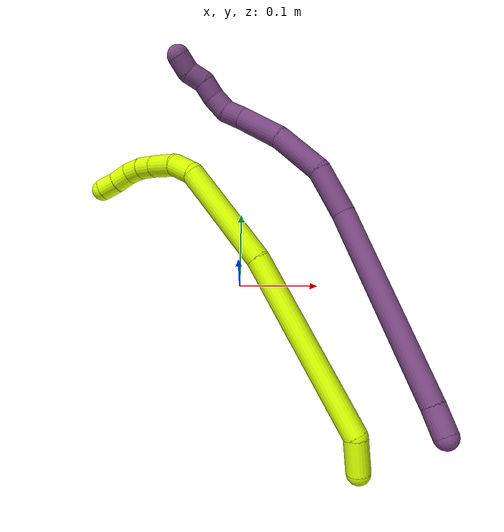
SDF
<sdf version="1.7">
 <world name="default">
  <model name="15">
   <static>0</static>
   <link name="15">
    <collision name="collision-cylinder-e_1_1_4">
     <pose>-0.007682 0.016788 0.001909 -1.45759 -0.426727 0.382129</pose>
     <geometry><cylinder><radius>0.0125</radius><length>0.037122</length></cylinder></geometry>
     <surface>
      <friction><ode><mu>1.16</mu><mu2>1.16</mu2><slip1>0</slip1><slip2>0</slip2></ode></friction>
      <contact><ode><kp>1e+06</kp><kd>1</kd><max_vel>0</max_vel><min_depth>0.001</min_depth></ode></contact>
     </surface>
    </collision>
    <visual name="visual-cylinder-e_1_1_4">
     <pose>-0.007682 0.016788 0.001909 -1.45759 -0.426727 0.382129</pose>
     <geometry><cylinder><radius>0.0125</radius><length>0.037122</length></cylinder></geometry>
     <material><ambient>0.835294 1 0 1</ambient></material>
    </visual>
    <collision name="collision-cylinder-e_2_4_5">
     <pose>-0.074588 0.106006 -0.03077 -2.01632 -0.635685 0.961705</pose>
     <geometry><cylinder><radius>0.0125</radius><length>0.199496</length></cylinder></geometry>
     <surface>
      <friction><ode><mu>1.16</mu><mu2>1.16</mu2><slip1>0</slip1><slip2>0</slip2></ode></friction>
      <contact><ode><kp>1e+06</kp><kd>1</kd><max_vel>0</max_vel><min_depth>0.001</min_depth></ode></contact>
     </surface>
    </collision>
    <visual name="visual-cylinder-e_2_4_5">
     <pose>-0.074588 0.106006 -0.03077 -2.01632 -0.635685 0.961705</pose>
     <geometry><cylinder><radius>0.0125</radius><length>0.199496</length></cylinder></geometry>
     <material><ambient>0.835294 1 0 1</ambient></material>
    </visual>
    <collision name="collision-cylinder-e_3_5_6">
     <pose>-0.172447 0.214711 -0.091063 -2.18726 -0.715423 1.25197</pose>
     <geometry><cylinder><radius>0.0125</radius><length>0.117803</length></cylinder></geometry>
     <surface>
      <friction><ode><mu>1.16</mu><mu2>1.16</mu2><slip1>0</slip1><slip2>0</slip2></ode></friction>
      <contact><ode><kp>1e+06</kp><kd>1</kd><max_vel>0</max_vel><min_depth>0.001</min_depth></ode></contact>
     </surface>
    </collision>
    <visual name="visual-cylinder-e_3_5_6">
     <pose>-0.172447 0.214711 -0.091063 -2.18726 -0.715423 1.25197</pose>
     <geometry><cylinder><radius>0.0125</radius><length>0.117803</length></cylinder></geometry>
     <material><ambient>0.835294 1 0 1</ambient></material>
    </visual>
    <collision name="collision-cylinder-e_4_6_7">
     <pose>-0.219109 0.254647 -0.128059 -2.82811 -0.594539 2.18906</pose>
     <geometry><cylinder><radius>0.0125</radius><length>0.028658</length></cylinder></geometry>
     <surface>
      <friction><ode><mu>1.16</mu><mu2>1.16</mu2><slip1>0</slip1><slip2>0</slip2></ode></friction>
      <contact><ode><kp>1e+06</kp><kd>1</kd><max_vel>0</max_vel><min_depth>0.001</min_depth></ode></contact>
     </surface>
    </collision>
    <visual name="visual-cylinder-e_4_6_7">
     <pose>-0.219109 0.254647 -0.128059 -2.82811 -0.594539 2.18906</pose>
     <geometry><cylinder><radius>0.0125</radius><length>0.028658</length></cylinder></geometry>
     <material><ambient>0.835294 1 0 1</ambient></material>
    </visual>
    <collision name="collision-cylinder-e_5_7_8">
     <pose>-0.234556 0.257238 -0.155384 3.07497 -0.432681 -2.84066</pose>
     <geometry><cylinder><radius>0.0125</radius><length>0.035399</length></cylinder></geometry>
     <surface>
      <friction><ode><mu>1.16</mu><mu2>1.16</mu2><slip1>0</slip1><slip2>0</slip2></ode></friction>
      <contact><ode><kp>1e+06</kp><kd>1</kd><max_vel>0</max_vel><min_depth>0.001</min_depth></ode></contact>
     </surface>
    </collision>
    <visual name="visual-cylinder-e_5_7_8">
     <pose>-0.234556 0.257238 -0.155384 3.07497 -0.432681 -2.84066</pose>
     <geometry><cylinder><radius>0.0125</radius><length>0.035399</length></cylinder></geometry>
     <material><ambient>0.835294 1 0 1</ambient></material>
    </visual>
    <collision name="collision-cylinder-e_6_8_9">
     <pose>-0.247273 0.254451 -0.180411 2.95285 -0.524296 -2.46335</pose>
     <geometry><cylinder><radius>0.0125</radius><length>0.021154</length></cylinder></geometry>
     <surface>
      <friction><ode><mu>1.16</mu><mu2>1.16</mu2><slip1>0</slip1><slip2>0</slip2></ode></friction>
      <contact><ode><kp>1e+06</kp><kd>1</kd><max_vel>0</max_vel><min_depth>0.001</min_depth></ode></contact>
     </surface>
    </collision>
    <visual name="visual-cylinder-e_6_8_9">
     <pose>-0.247273 0.254451 -0.180411 2.95285 -0.524296 -2.46335</pose>
     <geometry><cylinder><radius>0.0125</radius><length>0.021154</length></cylinder></geometry>
     <material><ambient>0.835294 1 0 1</ambient></material>
    </visual>
    <collision name="collision-cylinder-e_7_9_10">
     <pose>-0.257341 0.249002 -0.197439 2.70687 -0.4942 -1.70336</pose>
     <geometry><cylinder><radius>0.0125</radius><length>0.020124</length></cylinder></geometry>
     <surface>
      <friction><ode><mu>1.16</mu><mu2>1.16</mu2><slip1>0</slip1><slip2>0</slip2></ode></friction>
      <contact><ode><kp>1e+06</kp><kd>1</kd><max_vel>0</max_vel><min_depth>0.001</min_depth></ode></contact>
     </surface>
    </collision>
    <visual name="visual-cylinder-e_7_9_10">
     <pose>-0.257341 0.249002 -0.197439 2.70687 -0.4942 -1.70336</pose>
     <geometry><cylinder><radius>0.0125</radius><length>0.020124</length></cylinder></geometry>
     <material><ambient>0.835294 1 0 1</ambient></material>
    </visual>
    <collision name="collision-cylinder-e_8_10_11">
     <pose>-0.267203 0.238497 -0.210985 2.25386 -0.527609 -1.03315</pose>
     <geometry><cylinder><radius>0.0125</radius><length>0.020216</length></cylinder></geometry>
     <surface>
      <friction><ode><mu>1.16</mu><mu2>1.16</mu2><slip1>0</slip1><slip2>0</slip2></ode></friction>
      <contact><ode><kp>1e+06</kp><kd>1</kd><max_vel>0</max_vel><min_depth>0.001</min_depth></ode></contact>
     </surface>
    </collision>
    <visual name="visual-cylinder-e_8_10_11">
     <pose>-0.267203 0.238497 -0.210985 2.25386 -0.527609 -1.03315</pose>
     <geometry><cylinder><radius>0.0125</radius><length>0.020216</length></cylinder></geometry>
     <material><ambient>0.835294 1 0 1</ambient></material>
    </visual>
    <collision name="collision-cylinder-e_9_11_2">
     <pose>-0.278002 0.225534 -0.221915 2.2898 -0.606894 -1.20823</pose>
     <geometry><cylinder><radius>0.0125</radius><length>0.020026</length></cylinder></geometry>
     <surface>
      <friction><ode><mu>1.16</mu><mu2>1.16</mu2><slip1>0</slip1><slip2>0</slip2></ode></friction>
      <contact><ode><kp>1e+06</kp><kd>1</kd><max_vel>0</max_vel><min_depth>0.001</min_depth></ode></contact>
     </surface>
    </collision>
    <visual name="visual-cylinder-e_9_11_2">
     <pose>-0.278002 0.225534 -0.221915 2.2898 -0.606894 -1.20823</pose>
     <geometry><cylinder><radius>0.0125</radius><length>0.020026</length></cylinder></geometry>
     <material><ambient>0.835294 1 0 1</ambient></material>
    </visual>
    <collision name="collision-sphere-2">
     <pose>-0.283713 0.219345 -0.227332 0 -0 0</pose>
     <geometry><sphere><radius>0.0125</radius></sphere></geometry>
     <surface>
      <friction><ode><mu>1.16</mu><mu2>1.16</mu2><slip1>0</slip1><slip2>0</slip2></ode></friction>
      <contact><ode><kp>1e+06</kp><kd>1</kd><max_vel>0</max_vel><min_depth>0.001</min_depth></ode></contact>
     </surface>
    </collision>
    <visual name="visual-sphere-2">
     <pose>-0.283713 0.219345 -0.227332 0 -0 0</pose>
     <geometry><sphere><radius>0.0125</radius></sphere></geometry>
     <material><ambient>0.835294 1 0 1</ambient></material>
    </visual>
    <collision name="collision-sphere-11">
     <pose>-0.272292 0.231723 -0.216498 0 -0 0</pose>
     <geometry><sphere><radius>0.0125</radius></sphere></geometry>
     <surface>
      <friction><ode><mu>1.16</mu><mu2>1.16</mu2><slip1>0</slip1><slip2>0</slip2></ode></friction>
      <contact><ode><kp>1e+06</kp><kd>1</kd><max_vel>0</max_vel><min_depth>0.001</min_depth></ode></contact>
     </surface>
    </collision>
    <visual name="visual-sphere-11">
     <pose>-0.272292 0.231723 -0.216498 0 -0 0</pose>
     <geometry><sphere><radius>0.0125</radius></sphere></geometry>
     <material><ambient>0.835294 1 0 1</ambient></material>
    </visual>
    <collision name="collision-sphere-10">
     <pose>-0.262113 0.245271 -0.205473 0 -0 0</pose>
     <geometry><sphere><radius>0.0125</radius></sphere></geometry>
     <surface>
      <friction><ode><mu>1.16</mu><mu2>1.16</mu2><slip1>0</slip1><slip2>0</slip2></ode></friction>
      <contact><ode><kp>1e+06</kp><kd>1</kd><max_vel>0</max_vel><min_depth>0.001</min_depth></ode></contact>
     </surface>
    </collision>
    <visual name="visual-sphere-10">
     <pose>-0.262113 0.245271 -0.205473 0 -0 0</pose>
     <geometry><sphere><radius>0.0125</radius></sphere></geometry>
     <material><ambient>0.835294 1 0 1</ambient></material>
    </visual>
    <collision name="collision-sphere-9">
     <pose>-0.252568 0.252733 -0.189405 0 -0 0</pose>
     <geometry><sphere><radius>0.0125</radius></sphere></geometry>
     <surface>
      <friction><ode><mu>1.16</mu><mu2>1.16</mu2><slip1>0</slip1><slip2>0</slip2></ode></friction>
      <contact><ode><kp>1e+06</kp><kd>1</kd><max_vel>0</max_vel><min_depth>0.001</min_depth></ode></contact>
     </surface>
    </collision>
    <visual name="visual-sphere-9">
     <pose>-0.252568 0.252733 -0.189405 0 -0 0</pose>
     <geometry><sphere><radius>0.0125</radius></sphere></geometry>
     <material><ambient>0.835294 1 0 1</ambient></material>
    </visual>
    <collision name="collision-sphere-4">
     <pose>-0.015365 0.033577 0.003818 0 -0 0</pose>
     <geometry><sphere><radius>0.0125</radius></sphere></geometry>
     <surface>
      <friction><ode><mu>1.16</mu><mu2>1.16</mu2><slip1>0</slip1><slip2>0</slip2></ode></friction>
      <contact><ode><kp>1e+06</kp><kd>1</kd><max_vel>0</max_vel><min_depth>0.001</min_depth></ode></contact>
     </surface>
    </collision>
    <visual name="visual-sphere-4">
     <pose>-0.015365 0.033577 0.003818 0 -0 0</pose>
     <geometry><sphere><radius>0.0125</radius></sphere></geometry>
     <material><ambient>0.835294 1 0 1</ambient></material>
    </visual>
    <collision name="collision-sphere-1">
     <geometry><sphere><radius>0.0125</radius></sphere></geometry>
     <surface>
      <friction><ode><mu>1.16</mu><mu2>1.16</mu2><slip1>0</slip1><slip2>0</slip2></ode></friction>
      <contact><ode><kp>1e+06</kp><kd>1</kd><max_vel>0</max_vel><min_depth>0.001</min_depth></ode></contact>
     </surface>
    </collision>
    <visual name="visual-sphere-1">
     <geometry><sphere><radius>0.0125</radius></sphere></geometry>
     <material><ambient>0.835294 1 0 1</ambient></material>
    </visual>
    <collision name="collision-sphere-8">
     <pose>-0.241978 0.256169 -0.171417 0 -0 0</pose>
     <geometry><sphere><radius>0.0125</radius></sphere></geometry>
     <surface>
      <friction><ode><mu>1.16</mu><mu2>1.16</mu2><slip1>0</slip1><slip2>0</slip2></ode></friction>
      <contact><ode><kp>1e+06</kp><kd>1</kd><max_vel>0</max_vel><min_depth>0.001</min_depth></ode></contact>
     </surface>
    </collision>
    <visual name="visual-sphere-8">
     <pose>-0.241978 0.256169 -0.171417 0 -0 0</pose>
     <geometry><sphere><radius>0.0125</radius></sphere></geometry>
     <material><ambient>0.835294 1 0 1</ambient></material>
    </visual>
    <collision name="collision-sphere-5">
     <pose>-0.133811 0.178435 -0.065358 0 -0 0</pose>
     <geometry><sphere><radius>0.0125</radius></sphere></geometry>
     <surface>
      <friction><ode><mu>1.16</mu><mu2>1.16</mu2><slip1>0</slip1><slip2>0</slip2></ode></friction>
      <contact><ode><kp>1e+06</kp><kd>1</kd><max_vel>0</max_vel><min_depth>0.001</min_depth></ode></contact>
     </surface>
    </collision>
    <visual name="visual-sphere-5">
     <pose>-0.133811 0.178435 -0.065358 0 -0 0</pose>
     <geometry><sphere><radius>0.0125</radius></sphere></geometry>
     <material><ambient>0.835294 1 0 1</ambient></material>
    </visual>
    <collision name="collision-sphere-6">
     <pose>-0.211082 0.250987 -0.116767 0 -0 0</pose>
     <geometry><sphere><radius>0.0125</radius></sphere></geometry>
     <surface>
      <friction><ode><mu>1.16</mu><mu2>1.16</mu2><slip1>0</slip1><slip2>0</slip2></ode></friction>
      <contact><ode><kp>1e+06</kp><kd>1</kd><max_vel>0</max_vel><min_depth>0.001</min_depth></ode></contact>
     </surface>
    </collision>
    <visual name="visual-sphere-6">
     <pose>-0.211082 0.250987 -0.116767 0 -0 0</pose>
     <geometry><sphere><radius>0.0125</radius></sphere></geometry>
     <material><ambient>0.835294 1 0 1</ambient></material>
    </visual>
    <collision name="collision-sphere-7">
     <pose>-0.227135 0.258308 -0.139351 0 -0 0</pose>
     <geometry><sphere><radius>0.0125</radius></sphere></geometry>
     <surface>
      <friction><ode><mu>1.16</mu><mu2>1.16</mu2><slip1>0</slip1><slip2>0</slip2></ode></friction>
      <contact><ode><kp>1e+06</kp><kd>1</kd><max_vel>0</max_vel><min_depth>0.001</min_depth></ode></contact>
     </surface>
    </collision>
    <visual name="visual-sphere-7">
     <pose>-0.227135 0.258308 -0.139351 0 -0 0</pose>
     <geometry><sphere><radius>0.0125</radius></sphere></geometry>
     <material><ambient>0.835294 1 0 1</ambient></material>
    </visual>
    <inertial>
     <pose>-0.142882 0.1664 -0.08493 0 -0 0</pose>
     <mass>0.5</mass>
     <inertia>
      <ixx>0.000859</ixx>
      <ixy>0</ixy>
      <ixz>0</ixz>
      <iyy>0.000744</iyy>
      <iyz>0</iyz>
      <izz>-9.4e-05</izz>
     </inertia>
    </inertial>
   </link>
   <pose>0.121869 -0.227045 0.121243 0.263457 0.456941 -0.138348</pose>
  </model>
  <model name="20">
   <static>0</static>
   <link name="20">
    <collision name="collision-cylinder-e_1_1_4">
     <pose>-0.005289 0.013082 -0.004034 -1.86988 -0.368673 0.494857</pose>
     <geometry><cylinder><radius>0.0125</radius><length>0.029352</length></cylinder></geometry>
     <surface>
      <friction><ode><mu>1.16</mu><mu2>1.16</mu2><slip1>0</slip1><slip2>0</slip2></ode></friction>
      <contact><ode><kp>1e+06</kp><kd>1</kd><max_vel>0</max_vel><min_depth>0.001</min_depth></ode></contact>
     </surface>
    </collision>
    <visual name="visual-cylinder-e_1_1_4">
     <pose>-0.005289 0.013082 -0.004034 -1.86988 -0.368673 0.494857</pose>
     <geometry><cylinder><radius>0.0125</radius><length>0.029352</length></cylinder></geometry>
     <material><ambient>0.478431 0.278431 0.509804 1</ambient></material>
    </visual>
    <collision name="collision-cylinder-e_2_4_5">
     <pose>-0.053113 0.116719 -0.032963 -1.83909 -0.425275 0.552075</pose>
     <geometry><cylinder><radius>0.0125</radius><length>0.206197</length></cylinder></geometry>
     <surface>
      <friction><ode><mu>1.16</mu><mu2>1.16</mu2><slip1>0</slip1><slip2>0</slip2></ode></friction>
      <contact><ode><kp>1e+06</kp><kd>1</kd><max_vel>0</max_vel><min_depth>0.001</min_depth></ode></contact>
     </surface>
    </collision>
    <visual name="visual-cylinder-e_2_4_5">
     <pose>-0.053113 0.116719 -0.032963 -1.83909 -0.425275 0.552075</pose>
     <geometry><cylinder><radius>0.0125</radius><length>0.206197</length></cylinder></geometry>
     <material><ambient>0.478431 0.278431 0.509804 1</ambient></material>
    </visual>
    <collision name="collision-cylinder-e_3_5_6">
     <pose>-0.109296 0.229604 -0.060952 -1.70844 -0.544353 0.620183</pose>
     <geometry><cylinder><radius>0.0125</radius><length>0.052704</length></cylinder></geometry>
     <surface>
      <friction><ode><mu>1.16</mu><mu2>1.16</mu2><slip1>0</slip1><slip2>0</slip2></ode></friction>
      <contact><ode><kp>1e+06</kp><kd>1</kd><max_vel>0</max_vel><min_depth>0.001</min_depth></ode></contact>
     </surface>
    </collision>
    <visual name="visual-cylinder-e_3_5_6">
     <pose>-0.109296 0.229604 -0.060952 -1.70844 -0.544353 0.620183</pose>
     <geometry><cylinder><radius>0.0125</radius><length>0.052704</length></cylinder></geometry>
     <material><ambient>0.478431 0.278431 0.509804 1</ambient></material>
    </visual>
    <collision name="collision-cylinder-e_4_6_7">
     <pose>-0.144208 0.269993 -0.073254 -2.04235 -0.809338 1.22035</pose>
     <geometry><cylinder><radius>0.0125</radius><length>0.058759</length></cylinder></geometry>
     <surface>
      <friction><ode><mu>1.16</mu><mu2>1.16</mu2><slip1>0</slip1><slip2>0</slip2></ode></friction>
      <contact><ode><kp>1e+06</kp><kd>1</kd><max_vel>0</max_vel><min_depth>0.001</min_depth></ode></contact>
     </surface>
    </collision>
    <visual name="visual-cylinder-e_4_6_7">
     <pose>-0.144208 0.269993 -0.073254 -2.04235 -0.809338 1.22035</pose>
     <geometry><cylinder><radius>0.0125</radius><length>0.058759</length></cylinder></geometry>
     <material><ambient>0.478431 0.278431 0.509804 1</ambient></material>
    </visual>
    <collision name="collision-cylinder-e_5_7_8">
     <pose>-0.186177 0.299641 -0.092043 -2.26163 -0.942629 1.65004</pose>
     <geometry><cylinder><radius>0.0125</radius><length>0.051174</length></cylinder></geometry>
     <surface>
      <friction><ode><mu>1.16</mu><mu2>1.16</mu2><slip1>0</slip1><slip2>0</slip2></ode></friction>
      <contact><ode><kp>1e+06</kp><kd>1</kd><max_vel>0</max_vel><min_depth>0.001</min_depth></ode></contact>
     </surface>
    </collision>
    <visual name="visual-cylinder-e_5_7_8">
     <pose>-0.186177 0.299641 -0.092043 -2.26163 -0.942629 1.65004</pose>
     <geometry><cylinder><radius>0.0125</radius><length>0.051174</length></cylinder></geometry>
     <material><ambient>0.478431 0.278431 0.509804 1</ambient></material>
    </visual>
    <collision name="collision-cylinder-e_6_8_9">
     <pose>-0.216213 0.315195 -0.104176 -2.14261 -1.10307 1.69053</pose>
     <geometry><cylinder><radius>0.0125</radius><length>0.020912</length></cylinder></geometry>
     <surface>
      <friction><ode><mu>1.16</mu><mu2>1.16</mu2><slip1>0</slip1><slip2>0</slip2></ode></friction>
      <contact><ode><kp>1e+06</kp><kd>1</kd><max_vel>0</max_vel><min_depth>0.001</min_depth></ode></contact>
     </surface>
    </collision>
    <visual name="visual-cylinder-e_6_8_9">
     <pose>-0.216213 0.315195 -0.104176 -2.14261 -1.10307 1.69053</pose>
     <geometry><cylinder><radius>0.0125</radius><length>0.020912</length></cylinder></geometry>
     <material><ambient>0.478431 0.278431 0.509804 1</ambient></material>
    </visual>
    <collision name="collision-cylinder-e_7_9_10">
     <pose>-0.23297 0.326338 -0.106948 -1.60167 -0.801966 0.824398</pose>
     <geometry><cylinder><radius>0.0125</radius><length>0.02066</length></cylinder></geometry>
     <surface>
      <friction><ode><mu>1.16</mu><mu2>1.16</mu2><slip1>0</slip1><slip2>0</slip2></ode></friction>
      <contact><ode><kp>1e+06</kp><kd>1</kd><max_vel>0</max_vel><min_depth>0.001</min_depth></ode></contact>
     </surface>
    </collision>
    <visual name="visual-cylinder-e_7_9_10">
     <pose>-0.23297 0.326338 -0.106948 -1.60167 -0.801966 0.824398</pose>
     <geometry><cylinder><radius>0.0125</radius><length>0.02066</length></cylinder></geometry>
     <material><ambient>0.478431 0.278431 0.509804 1</ambient></material>
    </visual>
    <collision name="collision-cylinder-e_8_10_11">
     <pose>-0.246584 0.341113 -0.105013 -1.29412 -0.664803 0.510294</pose>
     <geometry><cylinder><radius>0.0125</radius><length>0.020067</length></cylinder></geometry>
     <surface>
      <friction><ode><mu>1.16</mu><mu2>1.16</mu2><slip1>0</slip1><slip2>0</slip2></ode></friction>
      <contact><ode><kp>1e+06</kp><kd>1</kd><max_vel>0</max_vel><min_depth>0.001</min_depth></ode></contact>
     </surface>
    </collision>
    <visual name="visual-cylinder-e_8_10_11">
     <pose>-0.246584 0.341113 -0.105013 -1.29412 -0.664803 0.510294</pose>
     <geometry><cylinder><radius>0.0125</radius><length>0.020067</length></cylinder></geometry>
     <material><ambient>0.478431 0.278431 0.509804 1</ambient></material>
    </visual>
    <collision name="collision-cylinder-e_9_11_12">
     <pose>-0.26177 0.352877 -0.10126 -1.20499 -1.11029 0.806417</pose>
     <geometry><cylinder><radius>0.0125</radius><length>0.020085</length></cylinder></geometry>
     <surface>
      <friction><ode><mu>1.16</mu><mu2>1.16</mu2><slip1>0</slip1><slip2>0</slip2></ode></friction>
      <contact><ode><kp>1e+06</kp><kd>1</kd><max_vel>0</max_vel><min_depth>0.001</min_depth></ode></contact>
     </surface>
    </collision>
    <visual name="visual-cylinder-e_9_11_12">
     <pose>-0.26177 0.352877 -0.10126 -1.20499 -1.11029 0.806417</pose>
     <geometry><cylinder><radius>0.0125</radius><length>0.020085</length></cylinder></geometry>
     <material><ambient>0.478431 0.278431 0.509804 1</ambient></material>
    </visual>
    <collision name="collision-cylinder-e_10_12_2">
     <pose>-0.276818 0.364259 -0.096164 -1.11918 -0.646507 0.413676</pose>
     <geometry><cylinder><radius>0.0125</radius><length>0.020089</length></cylinder></geometry>
     <surface>
      <friction><ode><mu>1.16</mu><mu2>1.16</mu2><slip1>0</slip1><slip2>0</slip2></ode></friction>
      <contact><ode><kp>1e+06</kp><kd>1</kd><max_vel>0</max_vel><min_depth>0.001</min_depth></ode></contact>
     </surface>
    </collision>
    <visual name="visual-cylinder-e_10_12_2">
     <pose>-0.276818 0.364259 -0.096164 -1.11918 -0.646507 0.413676</pose>
     <geometry><cylinder><radius>0.0125</radius><length>0.020089</length></cylinder></geometry>
     <material><ambient>0.478431 0.278431 0.509804 1</ambient></material>
    </visual>
    <collision name="collision-sphere-2">
     <pose>-0.282868 0.371472 -0.092665 0 -0 0</pose>
     <geometry><sphere><radius>0.0125</radius></sphere></geometry>
     <surface>
      <friction><ode><mu>1.16</mu><mu2>1.16</mu2><slip1>0</slip1><slip2>0</slip2></ode></friction>
      <contact><ode><kp>1e+06</kp><kd>1</kd><max_vel>0</max_vel><min_depth>0.001</min_depth></ode></contact>
     </surface>
    </collision>
    <visual name="visual-sphere-2">
     <pose>-0.282868 0.371472 -0.092665 0 -0 0</pose>
     <geometry><sphere><radius>0.0125</radius></sphere></geometry>
     <material><ambient>0.478431 0.278431 0.509804 1</ambient></material>
    </visual>
    <collision name="collision-sphere-12">
     <pose>-0.270767 0.357045 -0.099663 0 -0 0</pose>
     <geometry><sphere><radius>0.0125</radius></sphere></geometry>
     <surface>
      <friction><ode><mu>1.16</mu><mu2>1.16</mu2><slip1>0</slip1><slip2>0</slip2></ode></friction>
      <contact><ode><kp>1e+06</kp><kd>1</kd><max_vel>0</max_vel><min_depth>0.001</min_depth></ode></contact>
     </surface>
    </collision>
    <visual name="visual-sphere-12">
     <pose>-0.270767 0.357045 -0.099663 0 -0 0</pose>
     <geometry><sphere><radius>0.0125</radius></sphere></geometry>
     <material><ambient>0.478431 0.278431 0.509804 1</ambient></material>
    </visual>
    <collision name="collision-sphere-11">
     <pose>-0.252774 0.34871 -0.102856 0 -0 0</pose>
     <geometry><sphere><radius>0.0125</radius></sphere></geometry>
     <surface>
      <friction><ode><mu>1.16</mu><mu2>1.16</mu2><slip1>0</slip1><slip2>0</slip2></ode></friction>
      <contact><ode><kp>1e+06</kp><kd>1</kd><max_vel>0</max_vel><min_depth>0.001</min_depth></ode></contact>
     </surface>
    </collision>
    <visual name="visual-sphere-11">
     <pose>-0.252774 0.34871 -0.102856 0 -0 0</pose>
     <geometry><sphere><radius>0.0125</radius></sphere></geometry>
     <material><ambient>0.478431 0.278431 0.509804 1</ambient></material>
    </visual>
    <collision name="collision-sphere-10">
     <pose>-0.240395 0.333517 -0.10717 0 -0 0</pose>
     <geometry><sphere><radius>0.0125</radius></sphere></geometry>
     <surface>
      <friction><ode><mu>1.16</mu><mu2>1.16</mu2><slip1>0</slip1><slip2>0</slip2></ode></friction>
      <contact><ode><kp>1e+06</kp><kd>1</kd><max_vel>0</max_vel><min_depth>0.001</min_depth></ode></contact>
     </surface>
    </collision>
    <visual name="visual-sphere-10">
     <pose>-0.240395 0.333517 -0.10717 0 -0 0</pose>
     <geometry><sphere><radius>0.0125</radius></sphere></geometry>
     <material><ambient>0.478431 0.278431 0.509804 1</ambient></material>
    </visual>
    <collision name="collision-sphere-9">
     <pose>-0.225545 0.319159 -0.106727 0 -0 0</pose>
     <geometry><sphere><radius>0.0125</radius></sphere></geometry>
     <surface>
      <friction><ode><mu>1.16</mu><mu2>1.16</mu2><slip1>0</slip1><slip2>0</slip2></ode></friction>
      <contact><ode><kp>1e+06</kp><kd>1</kd><max_vel>0</max_vel><min_depth>0.001</min_depth></ode></contact>
     </surface>
    </collision>
    <visual name="visual-sphere-9">
     <pose>-0.225545 0.319159 -0.106727 0 -0 0</pose>
     <geometry><sphere><radius>0.0125</radius></sphere></geometry>
     <material><ambient>0.478431 0.278431 0.509804 1</ambient></material>
    </visual>
    <collision name="collision-sphere-4">
     <pose>-0.010578 0.026164 -0.008067 0 -0 0</pose>
     <geometry><sphere><radius>0.0125</radius></sphere></geometry>
     <surface>
      <friction><ode><mu>1.16</mu><mu2>1.16</mu2><slip1>0</slip1><slip2>0</slip2></ode></friction>
      <contact><ode><kp>1e+06</kp><kd>1</kd><max_vel>0</max_vel><min_depth>0.001</min_depth></ode></contact>
     </surface>
    </collision>
    <visual name="visual-sphere-4">
     <pose>-0.010578 0.026164 -0.008067 0 -0 0</pose>
     <geometry><sphere><radius>0.0125</radius></sphere></geometry>
     <material><ambient>0.478431 0.278431 0.509804 1</ambient></material>
    </visual>
    <collision name="collision-sphere-1">
     <geometry><sphere><radius>0.0125</radius></sphere></geometry>
     <surface>
      <friction><ode><mu>1.16</mu><mu2>1.16</mu2><slip1>0</slip1><slip2>0</slip2></ode></friction>
      <contact><ode><kp>1e+06</kp><kd>1</kd><max_vel>0</max_vel><min_depth>0.001</min_depth></ode></contact>
     </surface>
    </collision>
    <visual name="visual-sphere-1">
     <geometry><sphere><radius>0.0125</radius></sphere></geometry>
     <material><ambient>0.478431 0.278431 0.509804 1</ambient></material>
    </visual>
    <collision name="collision-sphere-8">
     <pose>-0.20688 0.31123 -0.101625 0 -0 0</pose>
     <geometry><sphere><radius>0.0125</radius></sphere></geometry>
     <surface>
      <friction><ode><mu>1.16</mu><mu2>1.16</mu2><slip1>0</slip1><slip2>0</slip2></ode></friction>
      <contact><ode><kp>1e+06</kp><kd>1</kd><max_vel>0</max_vel><min_depth>0.001</min_depth></ode></contact>
     </surface>
    </collision>
    <visual name="visual-sphere-8">
     <pose>-0.20688 0.31123 -0.101625 0 -0 0</pose>
     <geometry><sphere><radius>0.0125</radius></sphere></geometry>
     <material><ambient>0.478431 0.278431 0.509804 1</ambient></material>
    </visual>
    <collision name="collision-sphere-5">
     <pose>-0.095649 0.207274 -0.057859 0 -0 0</pose>
     <geometry><sphere><radius>0.0125</radius></sphere></geometry>
     <surface>
      <friction><ode><mu>1.16</mu><mu2>1.16</mu2><slip1>0</slip1><slip2>0</slip2></ode></friction>
      <contact><ode><kp>1e+06</kp><kd>1</kd><max_vel>0</max_vel><min_depth>0.001</min_depth></ode></contact>
     </surface>
    </collision>
    <visual name="visual-sphere-5">
     <pose>-0.095649 0.207274 -0.057859 0 -0 0</pose>
     <geometry><sphere><radius>0.0125</radius></sphere></geometry>
     <material><ambient>0.478431 0.278431 0.509804 1</ambient></material>
    </visual>
    <collision name="collision-sphere-6">
     <pose>-0.122942 0.251934 -0.064045 0 -0 0</pose>
     <geometry><sphere><radius>0.0125</radius></sphere></geometry>
     <surface>
      <friction><ode><mu>1.16</mu><mu2>1.16</mu2><slip1>0</slip1><slip2>0</slip2></ode></friction>
      <contact><ode><kp>1e+06</kp><kd>1</kd><max_vel>0</max_vel><min_depth>0.001</min_depth></ode></contact>
     </surface>
    </collision>
    <visual name="visual-sphere-6">
     <pose>-0.122942 0.251934 -0.064045 0 -0 0</pose>
     <geometry><sphere><radius>0.0125</radius></sphere></geometry>
     <material><ambient>0.478431 0.278431 0.509804 1</ambient></material>
    </visual>
    <collision name="collision-sphere-7">
     <pose>-0.165474 0.288052 -0.082462 0 -0 0</pose>
     <geometry><sphere><radius>0.0125</radius></sphere></geometry>
     <surface>
      <friction><ode><mu>1.16</mu><mu2>1.16</mu2><slip1>0</slip1><slip2>0</slip2></ode></friction>
      <contact><ode><kp>1e+06</kp><kd>1</kd><max_vel>0</max_vel><min_depth>0.001</min_depth></ode></contact>
     </surface>
    </collision>
    <visual name="visual-sphere-7">
     <pose>-0.165474 0.288052 -0.082462 0 -0 0</pose>
     <geometry><sphere><radius>0.0125</radius></sphere></geometry>
     <material><ambient>0.478431 0.278431 0.509804 1</ambient></material>
    </visual>
    <inertial>
     <pose>-0.11994 0.204669 -0.059207 0 -0 0</pose>
     <mass>0.5</mass>
     <inertia>
      <ixx>0.000955</ixx>
      <ixy>0</ixy>
      <ixz>0</ixz>
      <iyy>0.000426</iyy>
      <iyz>0</iyz>
      <izz>-0.00035</izz>
     </inertia>
    </inertial>
   </link>
   <pose>0.194801 -0.195958 0.173137 0.262978 0.08617 -0.047759</pose>
  </model>
 </world>
</sdf>
